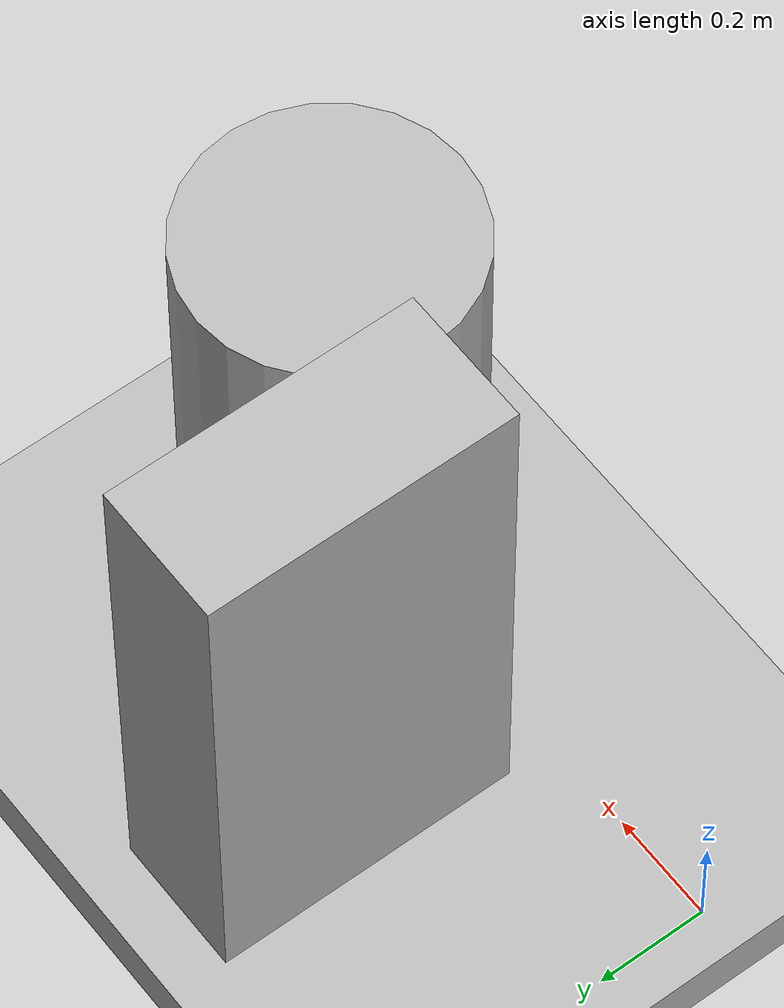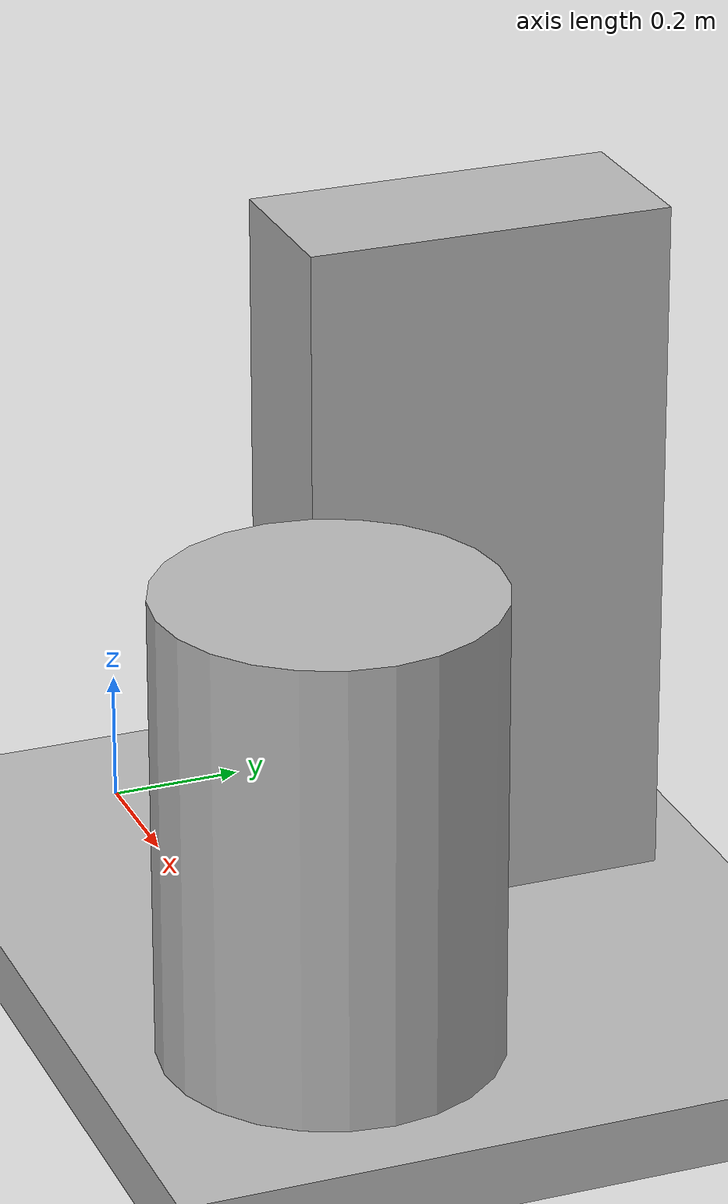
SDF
<?xml version="1.0"?>
<!-- Light partial occlusion; target remains visible from broad lateral arcs. -->
<sdf version="1.6">
  <world name="occlusion_light">
    <physics name="1ms" type="ignored"><max_step_size>0.001</max_step_size><real_time_factor>1.0</real_time_factor></physics>
    <plugin filename="ignition-gazebo-physics-system" name="gz::sim::systems::Physics"/>
    <plugin filename="ignition-gazebo-sensors-system" name="gz::sim::systems::Sensors"><render_engine>ogre2</render_engine></plugin>
    <plugin filename="ignition-gazebo-user-commands-system" name="gz::sim::systems::UserCommands"/>
    <plugin filename="ignition-gazebo-scene-broadcaster-system" name="gz::sim::systems::SceneBroadcaster"/>
    <light type="directional" name="sun"><pose>0 0 5 0 0 0</pose><diffuse>0.8 0.8 0.8 1</diffuse><specular>0.2 0.2 0.2 1</specular><direction>-0.5 0.1 -0.9</direction></light>
    <model name="ground_plane"><static>true</static><link name="link"><collision name="collision"><geometry><box><size>10 10 0.1</size></box></geometry></collision><visual name="visual"><geometry><box><size>10 10 0.1</size></box></geometry></visual></link></model>
    <model name="occluder"><static>true</static><pose>0.48 0.38 0.55 0 0 0</pose><link name="link"><collision name="collision"><geometry><box><size>0.25 0.55 1.1</size></box></geometry></collision><visual name="visual"><geometry><box><size>0.25 0.55 1.1</size></box></geometry></visual></link></model>
    <model name="target_object"><static>true</static><pose>0.95 0 0.4 0 0 0</pose><link name="target_link"><collision name="collision"><geometry><cylinder><radius>0.25</radius><length>0.7</length></cylinder></geometry></collision><visual name="visual"><geometry><cylinder><radius>0.25</radius><length>0.7</length></cylinder></geometry></visual></link></model>
  </world>
</sdf>
